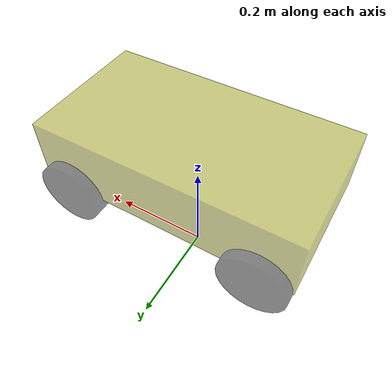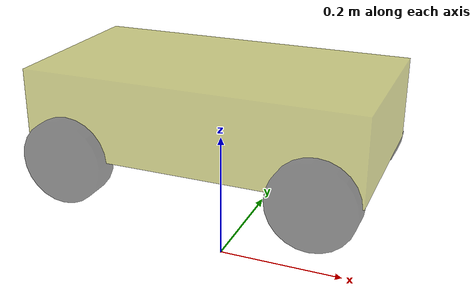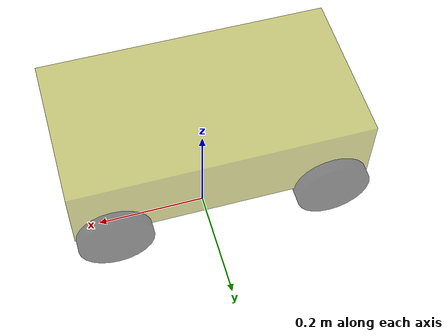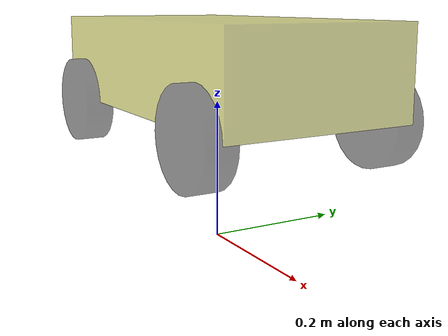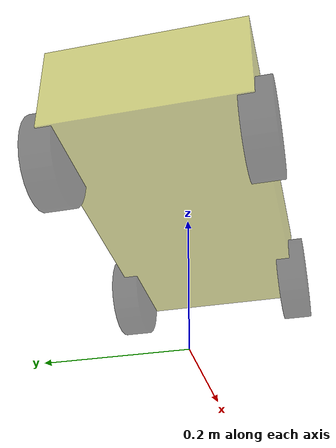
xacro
<!-- 底盘实现 -->
<robot xmlns:xacro="http://www.ros.org/wiki/xacro">
    <!-- 声明变量 -->
    <!-- 设置圆周PI -->
    <xacro:property name="PI" value="3.1415926"/>
    <!-- 底盘尺寸 -->
    <xacro:property name="car_length" value="0.5"/>
    <xacro:property name="car_width" value="0.265"/>
    <xacro:property name="car_height" value="0.125"/>
    <!-- 轮胎尺寸 -->
    <xacro:property name="wheel_radius" value="0.063"/>
    <xacro:property name="wheel_length" value="0.041"/>
    <!-- 离地间距 -->
    <xacro:property name="distance" value="0.065"/>
    <!-- 轮胎关节偏移量 -->
    <xacro:property name="wheel_joint_x" value="0.185"/>
    <xacro:property name="wheel_joint_y" value="0.1325"/>
    <xacro:property name="wheel_joint_z" value="0.063"/>

    <!-- 定义颜色 -->
    <material name="yellow">
        <color rgba="0.6 0.6 0 0.5" />
    </material>
    <material name="black">
        <color rgba="0.0 0.0 0.0 0.5" />
    </material>

<!-- 设置base_footprint(base_link地面上的投影) -->
    <link name="base_footprint">
        <visual>
            <geometry>
                <sphere radius="0.001"/>
            </geometry>
        </visual>
    </link>

<!-- 设置base_link -->
<link name="base_link">
    <visual>
        <geometry>
            <box size="${car_length} ${car_width} ${car_height}"/>
        </geometry>
        <material name="yellow"/>
        <origin xyz="0.0 0.0 0.1275"/>
    </visual>

</link>

<!-- 使用joint关联 -->
    <joint name="base_link2base_footprint" type="fixed">
        <parent link="base_footprint"/>
        <child link="base_link"/>
        <!-- z上的偏移量 = 车高/2 + 离地间距 -->
        <origin xyz="0.0 0.0 ${car_height/2 + distance}"/>

    </joint>
<!-- 定义车轮相关的宏 -->
    <!-- 宏函数创建规则：封装通用代码，变的数据以参数的方式暴露出去 -->
        <!-- 对于车轮，不变的是link_namem,变的是轮子name，child_link,origin(x,y,z) -->
        <xacro:macro name="wheel_func" params="wheel_name front_flag left_flag" >
            <link name="${wheel_name}_wheel">
                <visual>
                    <geometry>
                        <!-- 车轮半径 -->
                        <cylinder radius="${wheel_radius}" length="${wheel_length}" />
                    </geometry>
                        <origin rpy="${PI / 2} 0 0" />
                    <material name="black"/>
                </visual>
            </link>
            <joint name="${wheel_name}2baselink" type="continuous">
                <parent link="base_link"  />
                <child link="${wheel_name}_wheel" />
                <origin xyz="${wheel_joint_x * front_flag} ${wheel_joint_y * left_flag} ${wheel_joint_z}"/>
                <!-- 旋转轴 -->
                <axis xyz="0 1 0" />
            </joint>
        </xacro:macro>
<!-- 调用宏生成多个车轮 -->
        <xacro:wheel_func wheel_name = "front_left" front_flag="1" left_flag="1" />
        <xacro:wheel_func wheel_name = "front_right" front_flag="1" left_flag="-1" />
        <xacro:wheel_func wheel_name = "back_left" front_flag="-1" left_flag="1" />
        <xacro:wheel_func wheel_name = "back_right" front_flag="-1" left_flag="-1" />
</robot>
